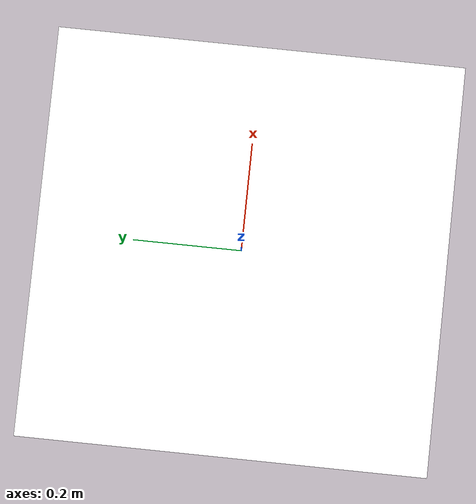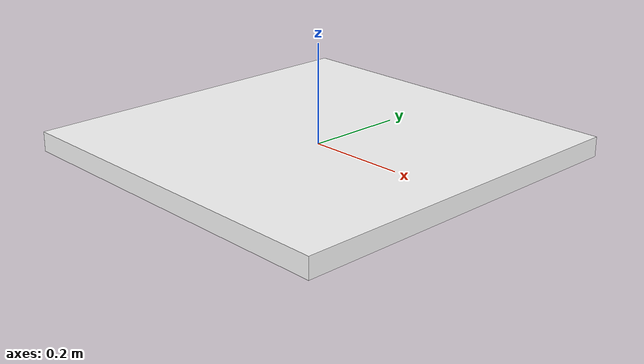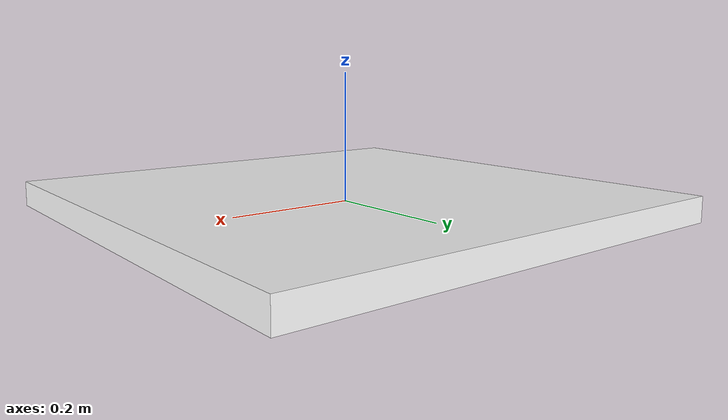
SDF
<?xml version="1.0"?>
<sdf version="1.6">
  <model name="Start Zone">
    <static>true</static>
    <link name="view1_link">

      <visual name="view_visual1">
        <pose>0 0 0 0 0 0</pose>
        <geometry>
          <box>
            <size>.75 .75 .04</size>
          </box>

        </geometry>
	  <material> <!-- Wheel material -->
          <ambient>1 1 1 1</ambient>
          <diffuse>1 1 1 1</diffuse>
          <specular>0 0 0 0</specular>
          <emissive>0 0 0 1</emissive>
        </material> <!-- End wheel material -->

      </visual>

    </link>
  </model>
</sdf>
